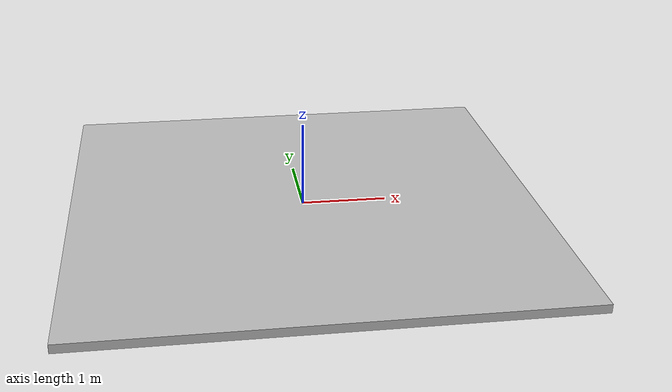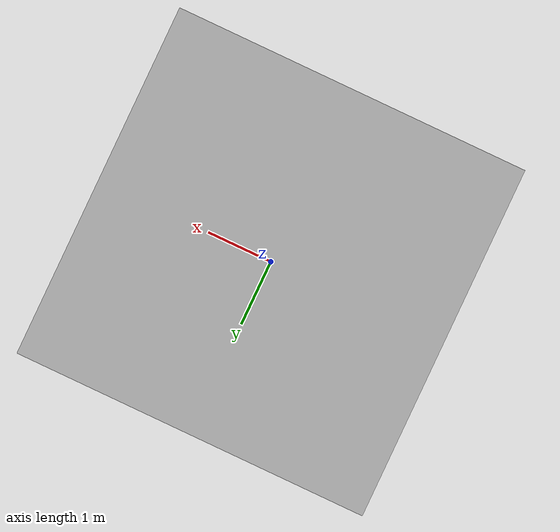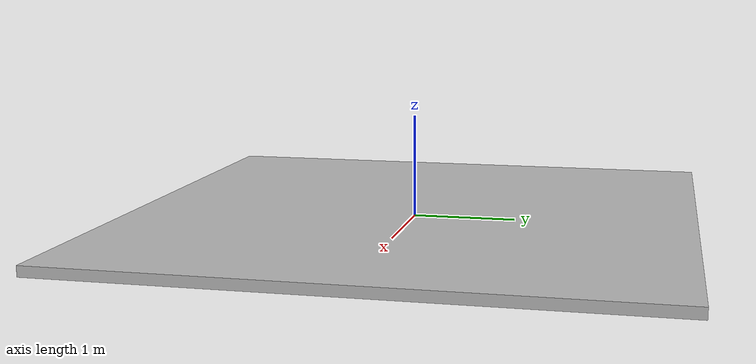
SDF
<?xml version="1.0" ?>
<sdf version="1.5">
  <model name="igvc_straightroad">
    <static>true</static>
    <link name="link">
      <collision name="collision">
        <geometry>
          <box>
            <size>5.5 5.5 .1</size>
          </box>
        </geometry>
      </collision>
      <visual name="visual">
        <cast_shadows>false</cast_shadows>
        <geometry>
          <box>
            <size>5.5 5.5 .1</size>
          </box>
        </geometry>
        <material>
          <script>
            <uri>model://igvc_straightroad/materials/scripts</uri>
            <uri>model://igvc_straightroad/materials/textures</uri>
            <name>vrc/course</name>
          </script>
        </material>
      </visual>
    </link>
  </model>
</sdf>
